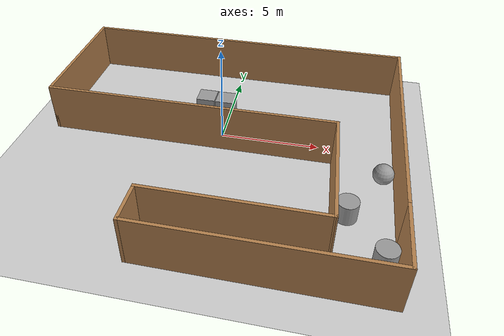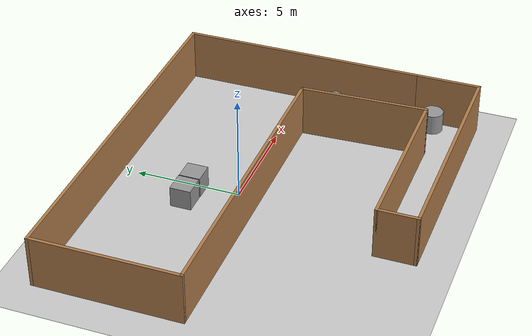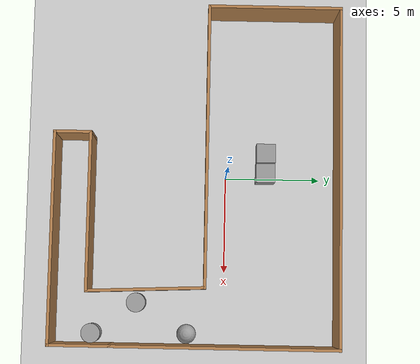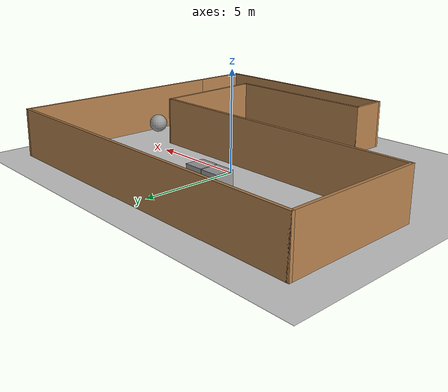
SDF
<sdf version="1.6">
 <world name="default">
  <light name="sun" type="directional">
   <pose>0 0 10 0 -0 0</pose>
   <diffuse>0.8 0.8 0.8 1</diffuse>
   <specular>0.2 0.2 0.2 1</specular>
   <attenuation>
    <range>1000</range>
    <constant>0.9</constant>
    <linear>0.01</linear>
    <quadratic>0.001</quadratic>
   </attenuation>
   <direction>-0.5 0.1 -0.9</direction>
  </light>
  <model name="ground_plane">
   <static>1</static>
   <link name="link">
    <collision name="collision">
     <geometry><plane><normal>0 0 1</normal><size>100 100</size></plane></geometry>
     <surface>
      <contact><collide_bitmask>65535</collide_bitmask></contact>
      <friction><ode><mu>100</mu><mu2>50</mu2></ode></friction>
     </surface>
    </collision>
    <visual name="visual">
     <cast_shadows>0</cast_shadows>
     <geometry><plane><normal>0 0 1</normal><size>100 100</size></plane></geometry>
     <material>
      <script><uri>file://media/materials/scripts/gazebo.material</uri><name>Gazebo/Grey</name></script>
     </material>
    </visual>
   </link>
  </model>
  <gravity>0 0 -9.8</gravity>
  <magnetic_field>6e-06 2.3e-05 -4.2e-05</magnetic_field>
  <atmosphere type="adiabatic"/>
  <physics name="default_physics" default="0" type="ode">
   <max_step_size>0.001</max_step_size>
   <real_time_factor>1</real_time_factor>
   <real_time_update_rate>1000</real_time_update_rate>
  </physics>
  <scene><ambient>0.4 0.4 0.4 1</ambient><background>0.7 0.7 0.7 1</background><shadows>1</shadows></scene>
  <spherical_coordinates>
   <surface_model>EARTH_WGS84</surface_model>
   <latitude_deg>0</latitude_deg>
   <longitude_deg>0</longitude_deg>
   <elevation>0</elevation>
   <heading_deg>0</heading_deg>
  </spherical_coordinates>
  <model name="wally">
   <pose>0.011651 -1.50874 0 0 -0 0</pose>
   <link name="Wall_12">
    <collision name="Wall_12_Collision">
     <geometry><box><size>7 0.15 2.5</size></box></geometry>
     <pose>0 0 1.25 0 -0 0</pose>
    </collision>
    <visual name="Wall_12_Visual">
     <pose>0 0 1.25 0 -0 0</pose>
     <geometry><box><size>7 0.15 2.5</size></box></geometry>
     <material>
      <script><uri>file://media/materials/scripts/gazebo.material</uri><name>Gazebo/Wood</name></script>
      <ambient>1 1 1 1</ambient>
     </material>
     <meta><layer>0</layer></meta>
    </visual>
    <pose>-8.8 3.925 0 0 -0 -1.5708</pose>
   </link>
   <link name="Wall_13">
    <collision name="Wall_13_Collision">
     <geometry><box><size>14.75 0.15 2.5</size></box></geometry>
     <pose>0 0 1.25 0 -0 0</pose>
    </collision>
    <visual name="Wall_13_Visual">
     <pose>0 0 1.25 0 -0 0</pose>
     <geometry><box><size>14.75 0.15 2.5</size></box></geometry>
     <material>
      <script><uri>file://media/materials/scripts/gazebo.material</uri><name>Gazebo/Wood</name></script>
      <ambient>1 1 1 1</ambient>
     </material>
     <meta><layer>0</layer></meta>
    </visual>
    <pose>-1.5 0.5 0 0 -0 0</pose>
   </link>
   <link name="Wall_18">
    <collision name="Wall_18_Collision">
     <geometry><box><size>3.25 0.15 2.5</size></box></geometry>
     <pose>0 0 1.25 0 -0 0</pose>
    </collision>
    <visual name="Wall_18_Visual">
     <pose>0 0 1.25 0 -0 0</pose>
     <geometry><box><size>3.25 0.15 2.5</size></box></geometry>
     <material>
      <script><uri>file://media/materials/scripts/gazebo.material</uri><name>Gazebo/Wood</name></script>
      <ambient>1 1 1 1</ambient>
     </material>
     <meta><layer>0</layer></meta>
    </visual>
    <pose>8.8 -5.8 0 0 -0 -1.5708</pose>
   </link>
   <link name="Wall_19">
    <collision name="Wall_19_Collision">
     <geometry><box><size>11 0.15 2.5</size></box></geometry>
     <pose>0 0 1.25 0 -0 0</pose>
    </collision>
    <visual name="Wall_19_Visual">
     <pose>0 0 1.25 0 -0 0</pose>
     <geometry><box><size>11 0.15 2.5</size></box></geometry>
     <material>
      <script><uri>file://media/materials/scripts/gazebo.material</uri><name>Gazebo/Wood</name></script>
      <ambient>1 1 1 1</ambient>
     </material>
     <meta><layer>0</layer></meta>
    </visual>
    <pose>3.375 -7.35 0 0 -0 3.14159</pose>
   </link>
   <link name="Wall_20">
    <collision name="Wall_20_Collision">
     <geometry><box><size>2 0.15 2.5</size></box></geometry>
     <pose>0 0 1.25 0 -0 0</pose>
    </collision>
    <visual name="Wall_20_Visual">
     <pose>0 0 1.25 0 -0 0</pose>
     <geometry><box><size>2 0.15 2.5</size></box></geometry>
     <material>
      <script><uri>file://media/materials/scripts/gazebo.material</uri><name>Gazebo/Wood</name></script>
      <ambient>1 1 1 1</ambient>
     </material>
     <meta><layer>0</layer></meta>
    </visual>
    <pose>-2.05 -6.425 0 0 -0 1.5708</pose>
   </link>
   <link name="Wall_21">
    <collision name="Wall_21_Collision">
     <geometry><box><size>8.25 0.15 2.5</size></box></geometry>
     <pose>0 0 1.25 0 -0 0</pose>
    </collision>
    <visual name="Wall_21_Visual">
     <pose>0 0 1.25 0 -0 0</pose>
     <geometry><box><size>8.25 0.15 2.5</size></box></geometry>
     <material>
      <script><uri>file://media/materials/scripts/gazebo.material</uri><name>Gazebo/Wood</name></script>
      <ambient>1 1 1 1</ambient>
     </material>
     <meta><layer>0</layer></meta>
    </visual>
    <pose>2 -5.5 0 0 -0 0</pose>
   </link>
   <link name="Wall_24">
    <collision name="Wall_24_Collision">
     <geometry><box><size>6.15521 0.15 2.5</size></box></geometry>
     <pose>0 0 1.25 0 -0 0</pose>
    </collision>
    <visual name="Wall_24_Visual">
     <pose>0 0 1.25 0 -0 0</pose>
     <geometry><box><size>6.15521 0.15 2.5</size></box></geometry>
     <material>
      <script><uri>file://media/materials/scripts/gazebo.material</uri><name>Gazebo/Wood</name></script>
      <ambient>1 1 1 1</ambient>
     </material>
     <meta><layer>0</layer></meta>
    </visual>
    <pose>5.925 -2.5 0 0 -0 -1.52915</pose>
   </link>
   <link name="Wall_8">
    <collision name="Wall_8_Collision">
     <geometry><box><size>17.75 0.15 2.5</size></box></geometry>
     <pose>0 0 1.25 0 -0 0</pose>
    </collision>
    <visual name="Wall_8_Visual">
     <pose>0 0 1.25 0 -0 0</pose>
     <geometry><box><size>17.75 0.15 2.5</size></box></geometry>
     <material>
      <script><uri>file://media/materials/scripts/gazebo.material</uri><name>Gazebo/Wood</name></script>
      <ambient>1 1 1 1</ambient>
     </material>
     <meta><layer>0</layer></meta>
    </visual>
    <pose>0 7.35 0 0 -0 0</pose>
   </link>
   <link name="Wall_9">
    <collision name="Wall_9_Collision">
     <geometry><box><size>11.75 0.15 2.5</size></box></geometry>
     <pose>0 0 1.25 0 -0 0</pose>
    </collision>
    <visual name="Wall_9_Visual">
     <pose>0 0 1.25 0 -0 0</pose>
     <geometry><box><size>11.75 0.15 2.5</size></box></geometry>
     <material>
      <script><uri>file://media/materials/scripts/gazebo.material</uri><name>Gazebo/Wood</name></script>
      <ambient>1 1 1 1</ambient>
     </material>
     <meta><layer>0</layer></meta>
    </visual>
    <pose>8.8 1.55 0 0 -0 -1.5708</pose>
   </link>
   <static>1</static>
  </model>
  <model name="unit_box">
   <pose>-1.30906 2.10643 0.499995 -1e-05 0 0</pose>
   <link name="link">
    <inertial>
     <mass>1</mass>
     <inertia>
      <ixx>0.166667</ixx>
      <ixy>0</ixy>
      <ixz>0</ixz>
      <iyy>0.166667</iyy>
      <iyz>0</iyz>
      <izz>0.166667</izz>
     </inertia>
    </inertial>
    <collision name="collision"><geometry><box><size>1 1 1</size></box></geometry></collision>
    <visual name="visual">
     <geometry><box><size>1 1 1</size></box></geometry>
     <material>
      <script><name>Gazebo/Grey</name><uri>file://media/materials/scripts/gazebo.material</uri></script>
     </material>
    </visual>
   </link>
  </model>
  <model name="unit_box_0">
   <pose>-0.256829 2.08831 0.499995 0 -1e-05 0</pose>
   <link name="link">
    <inertial>
     <mass>1</mass>
     <inertia>
      <ixx>0.166667</ixx>
      <ixy>0</ixy>
      <ixz>0</ixz>
      <iyy>0.166667</iyy>
      <iyz>0</iyz>
      <izz>0.166667</izz>
     </inertia>
    </inertial>
    <collision name="collision"><geometry><box><size>1 1 1</size></box></geometry></collision>
    <visual name="visual">
     <geometry><box><size>1 1 1</size></box></geometry>
     <material>
      <script><name>Gazebo/Grey</name><uri>file://media/materials/scripts/gazebo.material</uri></script>
     </material>
    </visual>
   </link>
  </model>
  <model name="unit_sphere">
   <pose>8.19916 -1.92205 0.5 0 -0 0</pose>
   <link name="link">
    <inertial>
     <mass>1</mass>
     <inertia><ixx>0.1</ixx><ixy>0</ixy><ixz>0</ixz><iyy>0.1</iyy><iyz>0</iyz><izz>0.1</izz></inertia>
    </inertial>
    <collision name="collision"><geometry><sphere><radius>0.5</radius></sphere></geometry></collision>
    <visual name="visual">
     <geometry><sphere><radius>0.5</radius></sphere></geometry>
     <material>
      <script><name>Gazebo/Grey</name><uri>file://media/materials/scripts/gazebo.material</uri></script>
     </material>
    </visual>
   </link>
  </model>
  <model name="unit_cylinder">
   <pose>6.62263 -4.56201 0.499993 -3e-06 -3e-06 0</pose>
   <link name="link">
    <inertial>
     <mass>1</mass>
     <inertia><ixx>0.145833</ixx><ixy>0</ixy><ixz>0</ixz><iyy>0.145833</iyy><iyz>0</iyz><izz>0.125</izz></inertia>
    </inertial>
    <collision name="collision">
     <geometry><cylinder><radius>0.5</radius><length>1</length></cylinder></geometry>
    </collision>
    <visual name="visual">
     <geometry><cylinder><radius>0.5</radius><length>1</length></cylinder></geometry>
     <material>
      <script><name>Gazebo/Grey</name><uri>file://media/materials/scripts/gazebo.material</uri></script>
     </material>
    </visual>
   </link>
  </model>
  <model name="unit_cylinder_0">
   <pose>8.23664 -6.86563 0.49999 0 -0 0</pose>
   <link name="link">
    <inertial>
     <mass>1</mass>
     <inertia><ixx>0.145833</ixx><ixy>0</ixy><ixz>0</ixz><iyy>0.145833</iyy><iyz>0</iyz><izz>0.125</izz></inertia>
    </inertial>
    <collision name="collision">
     <geometry><cylinder><radius>0.5</radius><length>1</length></cylinder></geometry>
    </collision>
    <visual name="visual">
     <geometry><cylinder><radius>0.5</radius><length>1</length></cylinder></geometry>
     <material>
      <script><name>Gazebo/Grey</name><uri>file://media/materials/scripts/gazebo.material</uri></script>
     </material>
    </visual>
   </link>
  </model>
 </world>
</sdf>
